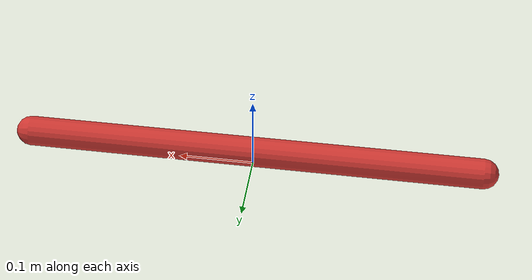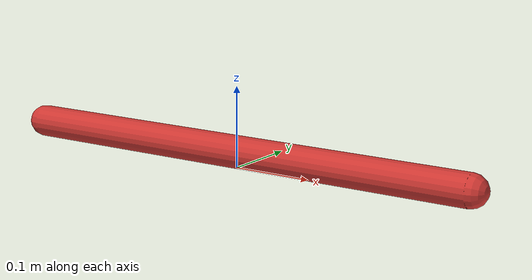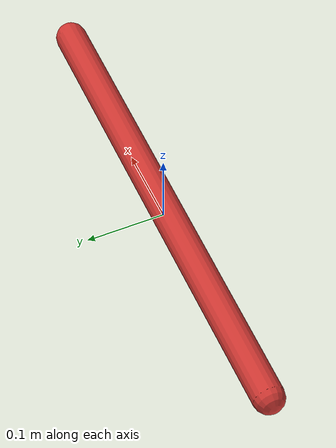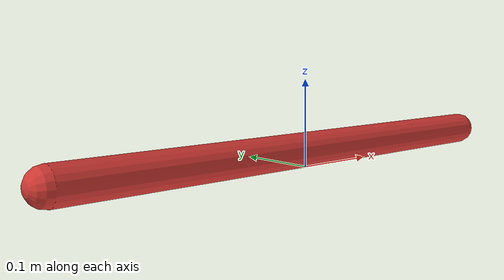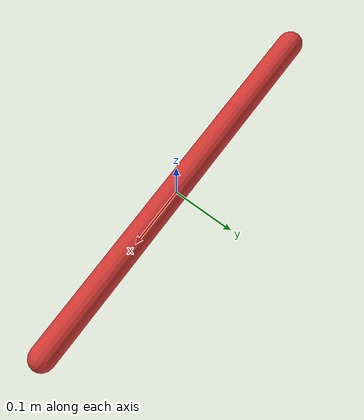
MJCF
<mujoco model="stick_prim_red_20">
  <compiler angle="radian"/>
  <asset>
  </asset>
  <worldbody>
    <body name="stick_prim_red_20">
      <freejoint/>
      <geom name="stick_prim_red_20_g0" type="capsule" size="0.02" fromto="-0.305 0 0.02 0.305 0 0.02" rgba="0.82 0.22 0.2 1" mass="0.05" friction="0.05 0.05 0.005" condim="4"/>
    </body>
  </worldbody>
</mujoco>
